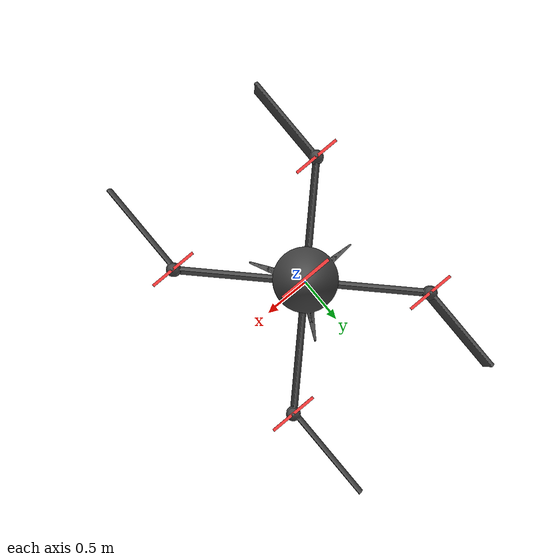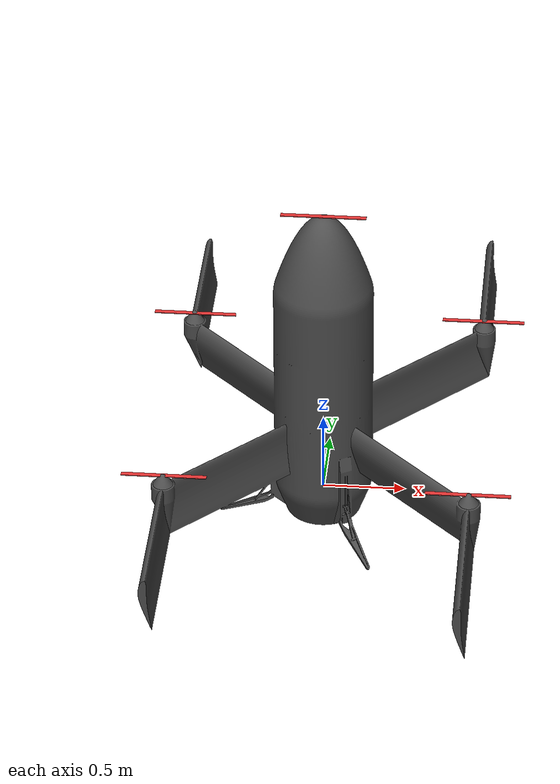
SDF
<?xml version="1.0"?>
<sdf version="1.10">
  <model name="hermes" canonical_link="base_link">
    <pose>0 0 0 0 0 0</pose>
    <static>false</static>
    <allow_auto_disable>false</allow_auto_disable>

    <plugin filename="gz-sim-imu-system"
        name="gz::sim::systems::Imu">
    </plugin>

    <plugin
      filename="gz-sim-sensors-system"
      name="gz::sim::systems::Sensors">
      <render_engine>ogre2</render_engine>
    </plugin>

    <plugin filename="gz-sim-navsat-system"
            name="gz::sim::systems::NavSat"/>

    <plugin filename="gz-sim-magnetometer-system"
            name="gz::sim::systems::Magnetometer"/>

    <plugin filename="gz-sim-air-pressure-system"
            name="gz::sim::systems::AirPressure"/>

    <plugin name="gz::sim::systems::PosePublisher" filename="gz-sim-pose-publisher-system">
      <publish_model_pose>true</publish_model_pose>

      <publish_link_pose>false</publish_link_pose>
      <publish_visual_pose>false</publish_visual_pose>
      <publish_collision_pose>false</publish_collision_pose>
      <publish_sensor_pose>false</publish_sensor_pose>

      <use_pose_vector_msg>true</use_pose_vector_msg>

      <update_frequency>100</update_frequency>
    </plugin>

    <link name="base_link"/>

    <link name="frame">
      <inertial>
        <pose>0 0 0.6553 0 -1.571 0</pose>
        <mass>263.700</mass> <!--actual mass:263.700-->
        <inertia>
          <ixx>148.894</ixx><ixy>0.0</ixy><ixz>0.0</ixz>
          <iyy>117.926</iyy><iyz>0.0</iyz>
          <izz>48.623</izz>
        </inertia>
      </inertial>

      <visual name="frame_visual">
        <pose>0 0 1.4427 0 -1.571 0</pose>
        <geometry><mesh><uri>meshes/hermesv3.stl</uri></mesh></geometry>
        <cast_shadows>true</cast_shadows>
        <material>
          <ambient>0 0 0 1</ambient>
          <diffuse>0.3 0.3 0.3 1</diffuse>
        </material>
      </visual>
      <collision name="frame_collision">
        <pose>0 0 1.4427 0 -1.571 0</pose>
        <geometry><mesh><uri>meshes/hermesv3.stl</uri></mesh></geometry>
      </collision>

      <sensor name="imu_sensor" type="imu">
        <pose>0 0 0.8875 0 0 0</pose>
        <update_rate>200</update_rate>
        <always_on>true</always_on>
        <visualize>false</visualize>
        <topic>/hermes/imu</topic>

        <imu>
          <angular_velocity>
            <x><noise type="gaussian"><mean>0</mean><stddev>0.0005</stddev></noise></x>
            <y><noise type="gaussian"><mean>0</mean><stddev>0.0005</stddev></noise></y>
            <z><noise type="gaussian"><mean>0</mean><stddev>0.0005</stddev></noise></z>
          </angular_velocity>
          <linear_acceleration>
            <x><noise type="gaussian"><mean>0</mean><stddev>0.03</stddev></noise></x>
            <y><noise type="gaussian"><mean>0</mean><stddev>0.03</stddev></noise></y>
            <z><noise type="gaussian"><mean>0</mean><stddev>0.03</stddev></noise></z>
          </linear_acceleration>
        </imu>
      </sensor>

      <sensor name="gpu_lidar" type="gpu_lidar">
        <pose relative_to="base_link">0 0 0.5 0 1.5708 0</pose>

        <topic>/lidar</topic>
        <update_rate>10</update_rate>

        <ray>
          <scan>
            <horizontal>
              <samples>181</samples>
              <resolution>1</resolution>
              <min_angle>-1.396263</min_angle>
              <max_angle>1.396263</max_angle>
            </horizontal>

            <vertical>
              <samples>1</samples>
              <resolution>1</resolution>
              <min_angle>0</min_angle>
              <max_angle>0</max_angle>
            </vertical>
          </scan>

          <range>
            <min>0.05</min>
            <max>200.0</max>
            <resolution>0.01</resolution>
          </range>
        </ray>

        <always_on>1</always_on>
        <visualize>true</visualize>
      </sensor>

      <!-- MAGNETOMETER -->
      <sensor name="mag" type="magnetometer">
        <pose>0 0 0.9 0 0 0</pose>
        <update_rate>100</update_rate>
        <always_on>true</always_on>
        <visualize>false</visualize>
        <topic>/hermes/mag</topic>
        <magnetometer>
          <x><noise type="gaussian"><mean>0</mean><stddev>1e-7</stddev></noise></x>
          <y><noise type="gaussian"><mean>0</mean><stddev>1e-7</stddev></noise></y>
          <z><noise type="gaussian"><mean>0</mean><stddev>1e-7</stddev></noise></z>
        </magnetometer>
      </sensor>

      <!-- BAROMETER -->
      <sensor name="baro" type="air_pressure">
        <pose>0 0 0.9 0 0 0</pose>
        <update_rate>50</update_rate>
        <always_on>true</always_on>
        <visualize>false</visualize>
        <topic>/hermes/air_pressure</topic>
        <air_pressure>
          <reference_altitude>0</reference_altitude>
          <noise type="gaussian">
            <mean>0</mean>
            <stddev>1.0</stddev> <!-- ~1 Pa RMS -->
          </noise>
        </air_pressure>
      </sensor>

      <sensor name="gps" type="navsat">
        <pose>0 0 0.9 0 0 0</pose>
        <update_rate>10</update_rate>
        <always_on>true</always_on>
        <visualize>false</visualize>
        <topic>/hermes/gps</topic>

        <navsat>
          <!-- Position noise (meters) -->
          <position_sensing>
            <horizontal>
              <noise type="gaussian">
                <mean>0</mean>
                <stddev>1.5</stddev> <!-- ~HDOP 1.5 m -->
              </noise>
            </horizontal>
            <vertical>
              <noise type="gaussian">
                <mean>0</mean>
                <stddev>3.0</stddev>
              </noise>
            </vertical>
          </position_sensing>

          <!-- Velocity noise (m/s) -->
          <velocity_sensing>
            <horizontal>
              <noise type="gaussian">
                <mean>0</mean>
                <stddev>0.1</stddev>
              </noise>
            </horizontal>
            <vertical>
              <noise type="gaussian">
                <mean>0</mean>
                <stddev>0.2</stddev>
              </noise>
            </vertical>
          </velocity_sensing>
        </navsat>
      </sensor>

    </link>

    <link name="nose_rotor">
      <pose>0 0 1.945 0 0 0</pose>
      <inertial>
        <mass>0.5</mass>
        <inertia>
          <ixx>0.00750</ixx>
          <ixy>0.0</ixy>
          <ixz>0.0</ixz>
          <iyy>0.00750</iyy>
          <iyz>0.0</iyz>
          <izz>0.01290</izz>
        </inertia>
      </inertial>
      <visual name="rotor_marker">
        <pose>0 0 0 0 0 0</pose>
        <geometry>
          <box><size>0.508 0.03 0.005</size></box>
        </geometry>
        <material>
          <ambient>0.9 0.2 0.2 1</ambient>
          <diffuse>0.9 0.2 0.2 1</diffuse>
          <specular>0 0 0 1</specular>
        </material>
      </visual>
      <collision name="nose_rotor_collision">
        <geometry><cylinder><radius>0.05</radius><length>0.4</length></cylinder></geometry>
      </collision>
    </link>

    <link name="fl_rotor">
      <pose>-0.875 -0.875 0.645 0 0 0</pose> <!--used 0.875 at xy-->
      <inertial>
        <mass>0.5</mass>
        <inertia>
          <ixx>0.00750</ixx>
          <ixy>0.0</ixy>
          <ixz>0.0</ixz>
          <iyy>0.00750</iyy>
          <iyz>0.0</iyz>
          <izz>0.01290</izz>
        </inertia>
      </inertial>
      <visual name="rotor_marker">
        <pose>0 0 0 0 0 0</pose>
        <geometry>
          <box><size>0.508 0.03 0.005</size></box>
        </geometry>
        <material>
          <ambient>0.9 0.2 0.2 1</ambient>
          <diffuse>0.9 0.2 0.2 1</diffuse>
          <specular>0 0 0 1</specular>
        </material>
      </visual>
      <collision name="fl_rotor_collision">
        <geometry><cylinder><radius>0.05</radius><length>0.4</length></cylinder></geometry>
      </collision>
    </link>

    <link name="fr_rotor">
      <pose>-0.875 0.875 0.645 0 0 0</pose> <!--used 0.875 at xy-->
      <inertial>
        <mass>0.5</mass>
        <inertia>
          <ixx>0.00750</ixx>
          <ixy>0.0</ixy>
          <ixz>0.0</ixz>
          <iyy>0.00750</iyy>
          <iyz>0.0</iyz>
          <izz>0.01290</izz>
        </inertia>
      </inertial>
      <visual name="rotor_marker">
        <pose>0 0 0 0 0 0</pose>
        <geometry>
          <box><size>0.508 0.03 0.005</size></box>
        </geometry>
        <material>
          <ambient>0.9 0.2 0.2 1</ambient>
          <diffuse>0.9 0.2 0.2 1</diffuse>
          <specular>0 0 0 1</specular>
        </material>
      </visual>
      <collision name="fr_rotor_collision">
        <geometry><cylinder><radius>0.05</radius><length>0.4</length></cylinder></geometry>
      </collision>
    </link>

    <link name="rl_rotor">
      <pose>0.925 -0.925 0.645 0 0 0</pose> <!--used 0.925 at xy-->
      <inertial>
        <mass>0.5</mass>
        <inertia>
          <ixx>0.00750</ixx>
          <ixy>0.0</ixy>
          <ixz>0.0</ixz>
          <iyy>0.00750</iyy>
          <iyz>0.0</iyz>
          <izz>0.01290</izz>
        </inertia>
      </inertial>
      <visual name="rotor_marker">
        <pose>0 0 0 0 0 0</pose>
        <geometry>
          <box><size>0.508 0.03 0.005</size></box>
        </geometry>
        <material>
          <ambient>0.9 0.2 0.2 1</ambient>
          <diffuse>0.9 0.2 0.2 1</diffuse>
          <specular>0 0 0 1</specular>
        </material>
      </visual>
      <collision name="rl_rotor_collision">
        <geometry><cylinder><radius>0.05</radius><length>0.4</length></cylinder></geometry>
      </collision>
    </link>

    <link name="rr_rotor">
      <pose>0.925 0.925 0.645 0 0 0</pose> <!--used 0.925 at xy-->
      <inertial>
        <mass>0.5</mass>
        <inertia>
          <ixx>0.00750</ixx>
          <ixy>0.0</ixy>
          <ixz>0.0</ixz>
          <iyy>0.00750</iyy>
          <iyz>0.0</iyz>
          <izz>0.01290</izz>
        </inertia>
      </inertial>
      <visual name="rotor_marker">
        <pose>0 0 0 0 0 0</pose>
        <geometry>
          <box><size>0.508 0.03 0.005</size></box>
        </geometry>
        <material>
          <ambient>0.9 0.2 0.2 1</ambient>
          <diffuse>0.9 0.2 0.2 1</diffuse>
          <specular>0 0 0 1</specular>
        </material>
      </visual>
      <collision name="rr_rotor_collision">
        <geometry><cylinder><radius>0.05</radius><length>0.4</length></cylinder></geometry>
      </collision>
    </link>

    <joint name="dummy_joint" type="fixed">
      <parent>base_link</parent>
      <child>frame</child>
    </joint>

    <joint name='nose_rotor_joint' type='revolute'>
      <child>nose_rotor</child>
      <parent>frame</parent>
      <axis>
        <xyz>0 0 -1</xyz>
      </axis>
    </joint>

    <joint name='fl_rotor_joint' type='revolute'>
      <child>fl_rotor</child>
      <parent>frame</parent>
      <axis>
        <xyz>0 0 -1</xyz>
      </axis>
    </joint>

    <joint name='fr_rotor_joint' type='revolute'>
      <child>fr_rotor</child>
      <parent>frame</parent>
      <axis>
        <xyz>0 0 -1</xyz>
      </axis>
    </joint>

    <joint name='rr_rotor_joint' type='revolute'>
      <child>rr_rotor</child>
      <parent>frame</parent>
      <axis>
        <xyz>0 0 -1</xyz>
      </axis>
    </joint>

    <joint name='rl_rotor_joint' type='revolute'>
      <child>rl_rotor</child>
      <parent>frame</parent>
      <axis>
        <xyz>0 0 -1</xyz>
      </axis>
    </joint>

    <plugin
      filename="gz-sim-multicopter-motor-model-system"
      name="gz::sim::systems::MulticopterMotorModel">
      <robotNamespace>hermes</robotNamespace>
      <jointName>nose_rotor_joint</jointName>
      <linkName>nose_rotor</linkName>
      <turningDirection>cw</turningDirection>

      <maxRotVelocity>380</maxRotVelocity> <!--314.2, old one -->
      <motorConstant>0.0111</motorConstant>
      <momentConstant>0.00170</momentConstant>
      <rotorDragCoefficient>2.0e-4</rotorDragCoefficient>
      <rollingMomentCoefficient>5.0e-6</rollingMomentCoefficient>
      <rotorVelocitySlowdownSim>1</rotorVelocitySlowdownSim>

      <actuator_number>0</actuator_number>
      <motorType>velocity</motorType>
    </plugin>

    <plugin
      filename="gz-sim-multicopter-motor-model-system"
      name="gz::sim::systems::MulticopterMotorModel">
      <robotNamespace>hermes</robotNamespace>
      <jointName>fl_rotor_joint</jointName>
      <linkName>fl_rotor</linkName>
      <turningDirection>ccw</turningDirection>

      <maxRotVelocity>380</maxRotVelocity>
      <motorConstant>0.0111</motorConstant>
      <momentConstant>0.00170</momentConstant>
      <rotorDragCoefficient>2.0e-4</rotorDragCoefficient>
      <rollingMomentCoefficient>5.0e-6</rollingMomentCoefficient>
      <rotorVelocitySlowdownSim>1</rotorVelocitySlowdownSim>

      <actuator_number>1</actuator_number>
      <motorType>velocity</motorType>
    </plugin>

    <plugin
      filename="gz-sim-multicopter-motor-model-system"
      name="gz::sim::systems::MulticopterMotorModel">
      <robotNamespace>hermes</robotNamespace>
      <jointName>fr_rotor_joint</jointName>
      <linkName>fr_rotor</linkName>
      <turningDirection>cw</turningDirection>

      <maxRotVelocity>380</maxRotVelocity>
      <motorConstant>0.0111</motorConstant>
      <momentConstant>0.00170</momentConstant>
      <rotorDragCoefficient>2.0e-4</rotorDragCoefficient>
      <rollingMomentCoefficient>5.0e-6</rollingMomentCoefficient>
      <rotorVelocitySlowdownSim>1</rotorVelocitySlowdownSim>

      <actuator_number>2</actuator_number>
      <motorType>velocity</motorType>
    </plugin>

    <plugin
      filename="gz-sim-multicopter-motor-model-system"
      name="gz::sim::systems::MulticopterMotorModel">
      <robotNamespace>hermes</robotNamespace>
      <jointName>rr_rotor_joint</jointName>
      <linkName>rr_rotor</linkName>
      <turningDirection>ccw</turningDirection>

      <maxRotVelocity>380</maxRotVelocity>
      <motorConstant>0.0111</motorConstant>
      <momentConstant>0.00170</momentConstant>
      <rotorDragCoefficient>2.0e-4</rotorDragCoefficient>
      <rollingMomentCoefficient>5.0e-6</rollingMomentCoefficient>
      <rotorVelocitySlowdownSim>1</rotorVelocitySlowdownSim>

      <actuator_number>3</actuator_number>
      <motorType>velocity</motorType>
    </plugin>

    <plugin
      filename="gz-sim-multicopter-motor-model-system"
      name="gz::sim::systems::MulticopterMotorModel">
      <robotNamespace>hermes</robotNamespace>
      <jointName>rl_rotor_joint</jointName>
      <linkName>rl_rotor</linkName>
      <turningDirection>cw</turningDirection>

      <maxRotVelocity>380</maxRotVelocity>
      <motorConstant>0.0111</motorConstant>
      <momentConstant>0.00170</momentConstant>
      <rotorDragCoefficient>2.0e-4</rotorDragCoefficient>
      <rollingMomentCoefficient>5.0e-6</rollingMomentCoefficient>
      <rotorVelocitySlowdownSim>1</rotorVelocitySlowdownSim>

      <actuator_number>4</actuator_number>
      <motorType>velocity</motorType>
    </plugin>

  </model>
</sdf>
